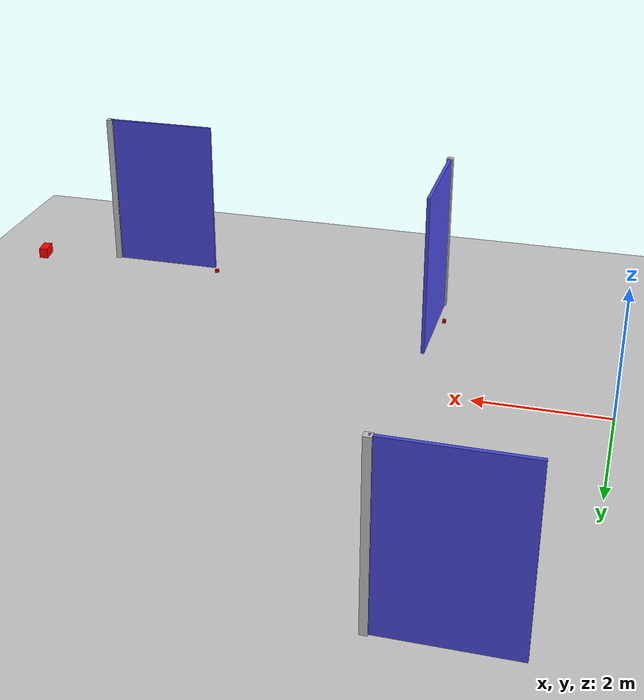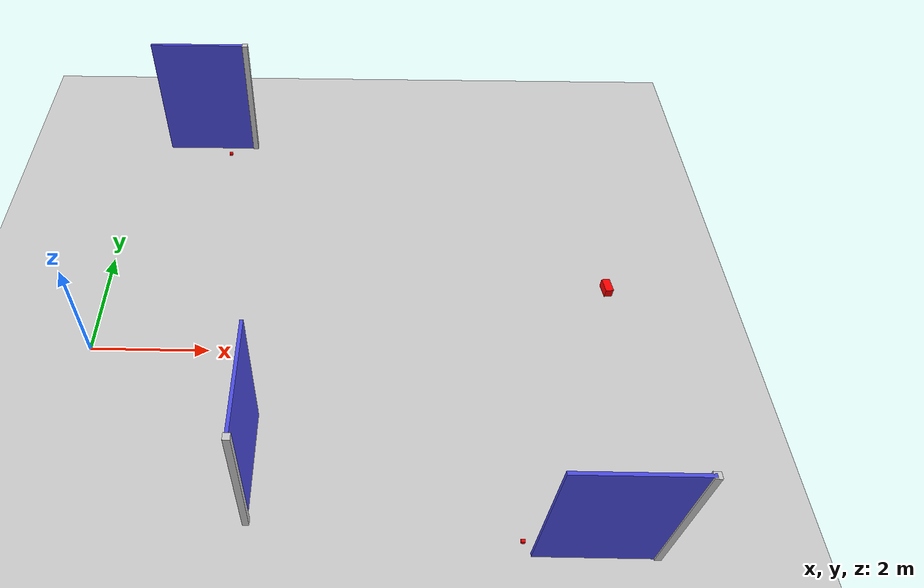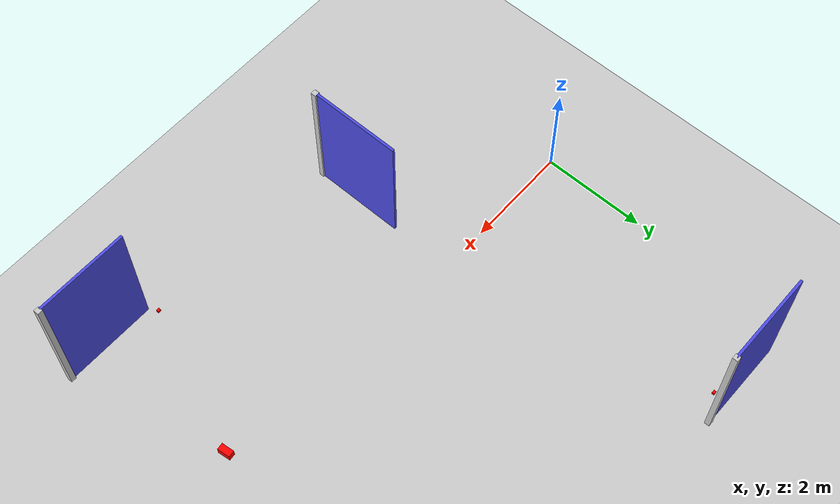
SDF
<sdf version="1.7">
 <world name="default">
  <model name="ground_plane">
   <static>1</static>
   <link name="link">
    <collision name="collision">
     <geometry><plane><normal>0 0 1</normal><size>100 100</size></plane></geometry>
     <surface><friction><ode><mu>100</mu><mu2>50</mu2></ode></friction></surface>
    </collision>
    <visual name="visual">
     <cast_shadows>0</cast_shadows>
     <geometry><plane><normal>0 0 1</normal><size>100 100</size></plane></geometry>
     <material>
      <script><uri>file://media/materials/scripts/gazebo.material</uri><name>Gazebo/Grey</name></script>
     </material>
    </visual>
   </link>
  </model>
  <model name="door_3">
   <link name="door_frame">
    <pose>0.883124 0.004995 1.25 0 -0 0</pose>
    <kinematic>1</kinematic>
    <inertial>
     <inertia><ixx>1</ixx><ixy>0</ixy><ixz>0</ixz><iyy>1</iyy><iyz>0</iyz><izz>1</izz></inertia>
     <mass>1</mass>
    </inertial>
    <visual name="frame_visual">
     <geometry><box><size>0.1 0.1 2.5</size></box></geometry>
     <material>
      <ambient>0.7 0.7 0.7 1</ambient>
      <diffuse>0.8 0.8 0.8 1</diffuse>
      <shader type="pixel"/>
      <script><name>ModelPreview_9::door_frame::frame_visual_MATERIAL_</name><uri>__default__</uri></script>
     </material>
    </visual>
    <collision name="frame_collision">
     <geometry><box><size>0.1 1 2.5</size></box></geometry>
     <surface>
      <friction>
       <ode><mu>1</mu><mu2>1</mu2><fdir1>0 0 0</fdir1><slip1>0</slip1><slip2>0</slip2></ode>
       <torsional>
        <coefficient>1</coefficient>
        <patch_radius>0</patch_radius>
        <surface_radius>0</surface_radius>
        <use_patch_radius>1</use_patch_radius>
        <ode><slip>0</slip></ode>
       </torsional>
      </friction>
      <bounce><restitution_coefficient>0</restitution_coefficient><threshold>1e+06</threshold></bounce>
      <contact>
       <collide_without_contact>0</collide_without_contact>
       <collide_without_contact_bitmask>1</collide_without_contact_bitmask>
       <collide_bitmask>1</collide_bitmask>
       <ode>
        <soft_cfm>0</soft_cfm>
        <soft_erp>0.2</soft_erp>
        <kp>1e+13</kp>
        <kd>1</kd>
        <max_vel>0.01</max_vel>
        <min_depth>0</min_depth>
       </ode>
       <bullet>
        <split_impulse>1</split_impulse>
        <split_impulse_penetration_threshold>-0.01</split_impulse_penetration_threshold>
        <soft_cfm>0</soft_cfm>
        <soft_erp>0.2</soft_erp>
        <kp>1e+13</kp>
        <kd>1</kd>
       </bullet>
      </contact>
     </surface>
    </collision>
   </link>
   <link name="door">
    <kinematic>1</kinematic>
    <pose>0 0 1.25 0 -0 0</pose>
    <inertial>
     <inertia><ixx>1.83367</ixx><ixy>0</ixy><ixz>0</ixz><iyy>2.74098</iyy><iyz>0</iyz><izz>0.90878</izz></inertia>
     <mass>3.51924</mass>
    </inertial>
    <visual name="door_visual">
     <geometry><box><size>1.75963 0.05 2.5</size></box></geometry>
     <material>
      <ambient>0.2 0.2 0.8 1</ambient>
      <diffuse>0.3 0.3 0.9 1</diffuse>
      <shader type="pixel"/>
      <script><name>ModelPreview_9::door::door_visual_MATERIAL_</name><uri>__default__</uri></script>
     </material>
    </visual>
    <collision name="door_collision">
     <geometry><box><size>1.75963 0.05 2.5</size></box></geometry>
     <surface>
      <friction>
       <ode><mu>1</mu><mu2>1</mu2><fdir1>0 0 0</fdir1><slip1>0</slip1><slip2>0</slip2></ode>
       <torsional>
        <coefficient>1</coefficient>
        <patch_radius>0</patch_radius>
        <surface_radius>0</surface_radius>
        <use_patch_radius>1</use_patch_radius>
        <ode><slip>0</slip></ode>
       </torsional>
      </friction>
      <bounce><restitution_coefficient>0</restitution_coefficient><threshold>1e+06</threshold></bounce>
      <contact>
       <collide_without_contact>0</collide_without_contact>
       <collide_without_contact_bitmask>1</collide_without_contact_bitmask>
       <collide_bitmask>1</collide_bitmask>
       <ode>
        <soft_cfm>0</soft_cfm>
        <soft_erp>0.2</soft_erp>
        <kp>1e+13</kp>
        <kd>1</kd>
        <max_vel>0.01</max_vel>
        <min_depth>0</min_depth>
       </ode>
       <bullet>
        <split_impulse>1</split_impulse>
        <split_impulse_penetration_threshold>-0.01</split_impulse_penetration_threshold>
        <soft_cfm>0</soft_cfm>
        <soft_erp>0.2</soft_erp>
        <kp>1e+13</kp>
        <kd>1</kd>
       </bullet>
      </contact>
     </surface>
    </collision>
   </link>
   <joint name="door_joint" type="prismatic">
    <parent>door_frame</parent>
    <child>door</child>
    <axis>
     <xyz>1 0 0</xyz>
     <limit><lower>0</lower><upper>2.0</upper><effort>-1</effort><velocity>-1</velocity></limit>
     <dynamics>
      <spring_reference>0</spring_reference>
      <spring_stiffness>0</spring_stiffness>
      <damping>0</damping>
      <friction>0</friction>
     </dynamics>
    </axis>
    <physics>
     <ode><limit><cfm>0</cfm><erp>0.2</erp></limit><suspension><cfm>0</cfm><erp>0.2</erp></suspension></ode>
    </physics>
   </joint>
   <static>0</static>
   <plugin name="door_control_plugin" filename="libdoor_control_plugin.so">
    <door_joint>door_joint</door_joint>
    <speed>1.0</speed>
    <open_target>1.0</open_target>
    <close_target>0.0</close_target>
   </plugin>
   <pose>1.42366 5.19412 0 0 -0 0</pose>
  </model>
  <model name="door_4">
   <link name="door_frame">
    <pose>0.883124 0.004995 1.25 0 -0 0</pose>
    <kinematic>1</kinematic>
    <inertial>
     <inertia><ixx>1</ixx><ixy>0</ixy><ixz>0</ixz><iyy>1</iyy><iyz>0</iyz><izz>1</izz></inertia>
     <mass>1</mass>
    </inertial>
    <visual name="frame_visual">
     <geometry><box><size>0.1 0.1 2.5</size></box></geometry>
     <material>
      <ambient>0.7 0.7 0.7 1</ambient>
      <diffuse>0.8 0.8 0.8 1</diffuse>
      <shader type="pixel"/>
      <script><name>ModelPreview_9::door_frame::frame_visual_MATERIAL_</name><uri>__default__</uri></script>
     </material>
    </visual>
    <collision name="frame_collision">
     <geometry><box><size>0.1 1 2.5</size></box></geometry>
     <surface>
      <friction>
       <ode><mu>1</mu><mu2>1</mu2><fdir1>0 0 0</fdir1><slip1>0</slip1><slip2>0</slip2></ode>
       <torsional>
        <coefficient>1</coefficient>
        <patch_radius>0</patch_radius>
        <surface_radius>0</surface_radius>
        <use_patch_radius>1</use_patch_radius>
        <ode><slip>0</slip></ode>
       </torsional>
      </friction>
      <bounce><restitution_coefficient>0</restitution_coefficient><threshold>1e+06</threshold></bounce>
      <contact>
       <collide_without_contact>0</collide_without_contact>
       <collide_without_contact_bitmask>1</collide_without_contact_bitmask>
       <collide_bitmask>1</collide_bitmask>
       <ode>
        <soft_cfm>0</soft_cfm>
        <soft_erp>0.2</soft_erp>
        <kp>1e+13</kp>
        <kd>1</kd>
        <max_vel>0.01</max_vel>
        <min_depth>0</min_depth>
       </ode>
       <bullet>
        <split_impulse>1</split_impulse>
        <split_impulse_penetration_threshold>-0.01</split_impulse_penetration_threshold>
        <soft_cfm>0</soft_cfm>
        <soft_erp>0.2</soft_erp>
        <kp>1e+13</kp>
        <kd>1</kd>
       </bullet>
      </contact>
     </surface>
    </collision>
   </link>
   <link name="door">
    <kinematic>1</kinematic>
    <pose>0 0 1.25 0 -0 0</pose>
    <inertial>
     <inertia><ixx>1.83367</ixx><ixy>0</ixy><ixz>0</ixz><iyy>2.74098</iyy><iyz>0</iyz><izz>0.90878</izz></inertia>
     <mass>3.51924</mass>
    </inertial>
    <visual name="door_visual">
     <geometry><box><size>1.75963 0.05 2.5</size></box></geometry>
     <material>
      <ambient>0.2 0.2 0.8 1</ambient>
      <diffuse>0.3 0.3 0.9 1</diffuse>
      <shader type="pixel"/>
      <script><name>ModelPreview_9::door::door_visual_MATERIAL_</name><uri>__default__</uri></script>
     </material>
    </visual>
    <collision name="door_collision">
     <geometry><box><size>1.75963 0.05 2.5</size></box></geometry>
     <surface>
      <friction>
       <ode><mu>1</mu><mu2>1</mu2><fdir1>0 0 0</fdir1><slip1>0</slip1><slip2>0</slip2></ode>
       <torsional>
        <coefficient>1</coefficient>
        <patch_radius>0</patch_radius>
        <surface_radius>0</surface_radius>
        <use_patch_radius>1</use_patch_radius>
        <ode><slip>0</slip></ode>
       </torsional>
      </friction>
      <bounce><restitution_coefficient>0</restitution_coefficient><threshold>1e+06</threshold></bounce>
      <contact>
       <collide_without_contact>0</collide_without_contact>
       <collide_without_contact_bitmask>1</collide_without_contact_bitmask>
       <collide_bitmask>1</collide_bitmask>
       <ode>
        <soft_cfm>0</soft_cfm>
        <soft_erp>0.2</soft_erp>
        <kp>1e+13</kp>
        <kd>1</kd>
        <max_vel>0.01</max_vel>
        <min_depth>0</min_depth>
       </ode>
       <bullet>
        <split_impulse>1</split_impulse>
        <split_impulse_penetration_threshold>-0.01</split_impulse_penetration_threshold>
        <soft_cfm>0</soft_cfm>
        <soft_erp>0.2</soft_erp>
        <kp>1e+13</kp>
        <kd>1</kd>
       </bullet>
      </contact>
     </surface>
    </collision>
   </link>
   <joint name="door_joint" type="prismatic">
    <parent>door_frame</parent>
    <child>door</child>
    <axis>
     <xyz>1 0 0</xyz>
     <limit><lower>0</lower><upper>2.0</upper><effort>-1</effort><velocity>-1</velocity></limit>
     <dynamics>
      <spring_reference>0</spring_reference>
      <spring_stiffness>0</spring_stiffness>
      <damping>0</damping>
      <friction>0</friction>
     </dynamics>
    </axis>
    <physics>
     <ode><limit><cfm>0</cfm><erp>0.2</erp></limit><suspension><cfm>0</cfm><erp>0.2</erp></suspension></ode>
    </physics>
   </joint>
   <static>0</static>
   <plugin name="door_control_plugin" filename="libdoor_control_plugin.so">
    <door_joint>door_joint</door_joint>
    <speed>1.0</speed>
    <open_target>1.0</open_target>
    <close_target>0.0</close_target>
   </plugin>
   <pose>7.85155 -3.37834 0 0 -0 0</pose>
  </model>
  <model name="door_5">
   <link name="door_frame">
    <pose>0.883124 0.004995 1.25 0 -0 0</pose>
    <kinematic>1</kinematic>
    <inertial>
     <inertia><ixx>1</ixx><ixy>0</ixy><ixz>0</ixz><iyy>1</iyy><iyz>0</iyz><izz>1</izz></inertia>
     <mass>1</mass>
    </inertial>
    <visual name="frame_visual">
     <geometry><box><size>0.1 0.1 2.5</size></box></geometry>
     <material>
      <ambient>0.7 0.7 0.7 1</ambient>
      <diffuse>0.8 0.8 0.8 1</diffuse>
      <shader type="pixel"/>
      <script><name>ModelPreview_9::door_frame::frame_visual_MATERIAL_</name><uri>__default__</uri></script>
     </material>
    </visual>
    <collision name="frame_collision">
     <geometry><box><size>0.1 1 2.5</size></box></geometry>
     <surface>
      <friction>
       <ode><mu>1</mu><mu2>1</mu2><fdir1>0 0 0</fdir1><slip1>0</slip1><slip2>0</slip2></ode>
       <torsional>
        <coefficient>1</coefficient>
        <patch_radius>0</patch_radius>
        <surface_radius>0</surface_radius>
        <use_patch_radius>1</use_patch_radius>
        <ode><slip>0</slip></ode>
       </torsional>
      </friction>
      <bounce><restitution_coefficient>0</restitution_coefficient><threshold>1e+06</threshold></bounce>
      <contact>
       <collide_without_contact>0</collide_without_contact>
       <collide_without_contact_bitmask>1</collide_without_contact_bitmask>
       <collide_bitmask>1</collide_bitmask>
       <ode>
        <soft_cfm>0</soft_cfm>
        <soft_erp>0.2</soft_erp>
        <kp>1e+13</kp>
        <kd>1</kd>
        <max_vel>0.01</max_vel>
        <min_depth>0</min_depth>
       </ode>
       <bullet>
        <split_impulse>1</split_impulse>
        <split_impulse_penetration_threshold>-0.01</split_impulse_penetration_threshold>
        <soft_cfm>0</soft_cfm>
        <soft_erp>0.2</soft_erp>
        <kp>1e+13</kp>
        <kd>1</kd>
       </bullet>
      </contact>
     </surface>
    </collision>
   </link>
   <link name="door">
    <kinematic>1</kinematic>
    <pose>0 0 1.25 0 -0 0</pose>
    <inertial>
     <inertia><ixx>1.83367</ixx><ixy>0</ixy><ixz>0</ixz><iyy>2.74098</iyy><iyz>0</iyz><izz>0.90878</izz></inertia>
     <mass>3.51924</mass>
    </inertial>
    <visual name="door_visual">
     <geometry><box><size>1.75963 0.05 2.5</size></box></geometry>
     <material>
      <ambient>0.2 0.2 0.8 1</ambient>
      <diffuse>0.3 0.3 0.9 1</diffuse>
      <shader type="pixel"/>
      <script><name>ModelPreview_9::door::door_visual_MATERIAL_</name><uri>__default__</uri></script>
     </material>
    </visual>
    <collision name="door_collision">
     <geometry><box><size>1.75963 0.05 2.5</size></box></geometry>
     <surface>
      <friction>
       <ode><mu>1</mu><mu2>1</mu2><fdir1>0 0 0</fdir1><slip1>0</slip1><slip2>0</slip2></ode>
       <torsional>
        <coefficient>1</coefficient>
        <patch_radius>0</patch_radius>
        <surface_radius>0</surface_radius>
        <use_patch_radius>1</use_patch_radius>
        <ode><slip>0</slip></ode>
       </torsional>
      </friction>
      <bounce><restitution_coefficient>0</restitution_coefficient><threshold>1e+06</threshold></bounce>
      <contact>
       <collide_without_contact>0</collide_without_contact>
       <collide_without_contact_bitmask>1</collide_without_contact_bitmask>
       <collide_bitmask>1</collide_bitmask>
       <ode>
        <soft_cfm>0</soft_cfm>
        <soft_erp>0.2</soft_erp>
        <kp>1e+13</kp>
        <kd>1</kd>
        <max_vel>0.01</max_vel>
        <min_depth>0</min_depth>
       </ode>
       <bullet>
        <split_impulse>1</split_impulse>
        <split_impulse_penetration_threshold>-0.01</split_impulse_penetration_threshold>
        <soft_cfm>0</soft_cfm>
        <soft_erp>0.2</soft_erp>
        <kp>1e+13</kp>
        <kd>1</kd>
       </bullet>
      </contact>
     </surface>
    </collision>
   </link>
   <joint name="door_joint" type="prismatic">
    <parent>door_frame</parent>
    <child>door</child>
    <axis>
     <xyz>1 0 0</xyz>
     <limit><lower>0</lower><upper>2.0</upper><effort>-1</effort><velocity>-1</velocity></limit>
     <dynamics>
      <spring_reference>0</spring_reference>
      <spring_stiffness>0</spring_stiffness>
      <damping>0</damping>
      <friction>0</friction>
     </dynamics>
    </axis>
    <physics>
     <ode><limit><cfm>0</cfm><erp>0.2</erp></limit><suspension><cfm>0</cfm><erp>0.2</erp></suspension></ode>
    </physics>
   </joint>
   <static>0</static>
   <plugin name="door_control_plugin" filename="libdoor_control_plugin.so">
    <door_joint>door_joint</door_joint>
    <speed>1.0</speed>
    <open_target>1.0</open_target>
    <close_target>0.0</close_target>
   </plugin>
   <pose>2.92343 -2.09013 0 0 0 -1.57268</pose>
  </model>
  <model name="Lidar_1">
   <link name="link_1">
    <inertial>
     <mass>0.00014111</mass>
     <inertia><ixx>7e-08</ixx><ixy>0</ixy><ixz>0</ixz><iyy>7e-08</iyy><iyz>0</iyz><izz>6e-08</izz></inertia>
    </inertial>
    <visual name="visual">
     <geometry><box><size>0.048286 0.048861 0.059852</size></box></geometry>
     <material>
      <lighting>1</lighting>
      <script><uri>file://media/materials/scripts/gazebo.material</uri><name>Gazebo/Grey</name></script>
      <shader type="pixel"><normal_map>__default__</normal_map></shader>
      <ambient>1 0 0 1</ambient>
      <diffuse>0.7 0.7 0.7 1</diffuse>
      <specular>0.01 0.01 0.01 1</specular>
      <emissive>0 0 0 1</emissive>
     </material>
    </visual>
    <collision name="collision">
     <geometry><box><size>0.048286 0.048861 0.059852</size></box></geometry>
     <surface>
      <friction>
       <ode><mu>1</mu><mu2>1</mu2><fdir1>0 0 0</fdir1><slip1>0</slip1><slip2>0</slip2></ode>
       <torsional>
        <coefficient>1</coefficient>
        <patch_radius>0</patch_radius>
        <surface_radius>0</surface_radius>
        <use_patch_radius>1</use_patch_radius>
        <ode><slip>0</slip></ode>
       </torsional>
      </friction>
      <bounce><restitution_coefficient>0</restitution_coefficient><threshold>1e+06</threshold></bounce>
      <contact>
       <collide_without_contact>0</collide_without_contact>
       <collide_without_contact_bitmask>1</collide_without_contact_bitmask>
       <collide_bitmask>1</collide_bitmask>
       <ode>
        <soft_cfm>0</soft_cfm>
        <soft_erp>0.2</soft_erp>
        <kp>1e+13</kp>
        <kd>1</kd>
        <max_vel>0.01</max_vel>
        <min_depth>0</min_depth>
       </ode>
       <bullet>
        <split_impulse>1</split_impulse>
        <split_impulse_penetration_threshold>-0.01</split_impulse_penetration_threshold>
        <soft_cfm>0</soft_cfm>
        <soft_erp>0.2</soft_erp>
        <kp>1e+13</kp>
        <kd>1</kd>
       </bullet>
      </contact>
     </surface>
    </collision>
   </link>
   <static>0</static>
   <pose>2.79303 -2.32179 0.024423 -1.57087 -8e-06 0.004113</pose>
  </model>
  <model name="Lidar_2">
   <link name="link_1">
    <inertial>
     <mass>0.00014111</mass>
     <inertia><ixx>7e-08</ixx><ixy>0</ixy><ixz>0</ixz><iyy>7e-08</iyy><iyz>0</iyz><izz>6e-08</izz></inertia>
    </inertial>
    <visual name="visual">
     <geometry><box><size>0.048286 0.048861 0.059852</size></box></geometry>
     <material>
      <lighting>1</lighting>
      <script><uri>file://media/materials/scripts/gazebo.material</uri><name>Gazebo/Grey</name></script>
      <shader type="pixel"><normal_map>__default__</normal_map></shader>
      <ambient>1 0 0 1</ambient>
      <diffuse>0.7 0.7 0.7 1</diffuse>
      <specular>0.01 0.01 0.01 1</specular>
      <emissive>0 0 0 1</emissive>
     </material>
    </visual>
    <collision name="collision">
     <geometry><box><size>0.048286 0.048861 0.059852</size></box></geometry>
     <surface>
      <friction>
       <ode><mu>1</mu><mu2>1</mu2><fdir1>0 0 0</fdir1><slip1>0</slip1><slip2>0</slip2></ode>
       <torsional>
        <coefficient>1</coefficient>
        <patch_radius>0</patch_radius>
        <surface_radius>0</surface_radius>
        <use_patch_radius>1</use_patch_radius>
        <ode><slip>0</slip></ode>
       </torsional>
      </friction>
      <bounce><restitution_coefficient>0</restitution_coefficient><threshold>1e+06</threshold></bounce>
      <contact>
       <collide_without_contact>0</collide_without_contact>
       <collide_without_contact_bitmask>1</collide_without_contact_bitmask>
       <collide_bitmask>1</collide_bitmask>
       <ode>
        <soft_cfm>0</soft_cfm>
        <soft_erp>0.2</soft_erp>
        <kp>1e+13</kp>
        <kd>1</kd>
        <max_vel>0.01</max_vel>
        <min_depth>0</min_depth>
       </ode>
       <bullet>
        <split_impulse>1</split_impulse>
        <split_impulse_penetration_threshold>-0.01</split_impulse_penetration_threshold>
        <soft_cfm>0</soft_cfm>
        <soft_erp>0.2</soft_erp>
        <kp>1e+13</kp>
        <kd>1</kd>
       </bullet>
      </contact>
     </surface>
    </collision>
   </link>
   <static>0</static>
   <pose>1.8151 4.95888 0.024137 2.5155 -1.5707 -2.52466</pose>
  </model>
  <model name="Lidar_6">
   <link name="link_1">
    <inertial>
     <mass>0.00014111</mass>
     <inertia><ixx>7e-08</ixx><ixy>0</ixy><ixz>0</ixz><iyy>7e-08</iyy><iyz>0</iyz><izz>6e-08</izz></inertia>
    </inertial>
    <visual name="visual">
     <geometry><box><size>0.048286 0.048861 0.059852</size></box></geometry>
     <material>
      <lighting>1</lighting>
      <script><uri>file://media/materials/scripts/gazebo.material</uri><name>Gazebo/Grey</name></script>
      <shader type="pixel"><normal_map>__default__</normal_map></shader>
      <ambient>1 0 0 1</ambient>
      <diffuse>0.7 0.7 0.7 1</diffuse>
      <specular>0.01 0.01 0.01 1</specular>
      <emissive>0 0 0 1</emissive>
     </material>
    </visual>
    <collision name="collision">
     <geometry><box><size>0.048286 0.048861 0.059852</size></box></geometry>
     <surface>
      <friction>
       <ode><mu>1</mu><mu2>1</mu2><fdir1>0 0 0</fdir1><slip1>0</slip1><slip2>0</slip2></ode>
       <torsional>
        <coefficient>1</coefficient>
        <patch_radius>0</patch_radius>
        <surface_radius>0</surface_radius>
        <use_patch_radius>1</use_patch_radius>
        <ode><slip>0</slip></ode>
       </torsional>
      </friction>
      <bounce><restitution_coefficient>0</restitution_coefficient><threshold>1e+06</threshold></bounce>
      <contact>
       <collide_without_contact>0</collide_without_contact>
       <collide_without_contact_bitmask>1</collide_without_contact_bitmask>
       <collide_bitmask>1</collide_bitmask>
       <ode>
        <soft_cfm>0</soft_cfm>
        <soft_erp>0.2</soft_erp>
        <kp>1e+13</kp>
        <kd>1</kd>
        <max_vel>0.01</max_vel>
        <min_depth>0</min_depth>
       </ode>
       <bullet>
        <split_impulse>1</split_impulse>
        <split_impulse_penetration_threshold>-0.01</split_impulse_penetration_threshold>
        <soft_cfm>0</soft_cfm>
        <soft_erp>0.2</soft_erp>
        <kp>1e+13</kp>
        <kd>1</kd>
       </bullet>
      </contact>
     </surface>
    </collision>
   </link>
   <static>0</static>
   <pose>6.88095 -3.19338 0.024139 0.353936 1.5707 0.344828</pose>
  </model>
  <model name="Camera_1">
   <link name="link_1">
    <inertial>
     <mass>0.00014152</mass>
     <inertia><ixx>8.3e-07</ixx><ixy>0</ixy><ixz>0</ixz><iyy>4e-07</iyy><iyz>0</iyz><izz>7.7e-07</izz></inertia>
    </inertial>
    <gravity>0</gravity>
    <visual name="visual">
     <geometry><box><size>0.119276 0.225925 0.14044</size></box></geometry>
     <material>
      <lighting>1</lighting>
      <script><uri>file://media/materials/scripts/gazebo.material</uri><name>Gazebo/Grey</name></script>
      <shader type="pixel"><normal_map>__default__</normal_map></shader>
      <ambient>1 0 0 1</ambient>
      <diffuse>0.7 0.7 0.7 1</diffuse>
      <specular>0.01 0.01 0.01 1</specular>
      <emissive>0 0 0 1</emissive>
     </material>
    </visual>
    <collision name="collision">
     <geometry><box><size>0.119276 0.225925 0.14044</size></box></geometry>
     <surface>
      <friction>
       <ode><mu>1</mu><mu2>1</mu2><fdir1>0 0 0</fdir1><slip1>0</slip1><slip2>0</slip2></ode>
       <torsional>
        <coefficient>1</coefficient>
        <patch_radius>0</patch_radius>
        <surface_radius>0</surface_radius>
        <use_patch_radius>1</use_patch_radius>
        <ode><slip>0</slip></ode>
       </torsional>
      </friction>
      <bounce><restitution_coefficient>0</restitution_coefficient><threshold>1e+06</threshold></bounce>
      <contact>
       <collide_without_contact>0</collide_without_contact>
       <collide_without_contact_bitmask>1</collide_without_contact_bitmask>
       <collide_bitmask>1</collide_bitmask>
       <ode>
        <soft_cfm>0</soft_cfm>
        <soft_erp>0.2</soft_erp>
        <kp>1e+13</kp>
        <kd>1</kd>
        <max_vel>0.01</max_vel>
        <min_depth>0</min_depth>
       </ode>
       <bullet>
        <split_impulse>1</split_impulse>
        <split_impulse_penetration_threshold>-0.01</split_impulse_penetration_threshold>
        <soft_cfm>0</soft_cfm>
        <soft_erp>0.2</soft_erp>
        <kp>1e+13</kp>
        <kd>1</kd>
       </bullet>
      </contact>
     </surface>
    </collision>
   </link>
   <static>0</static>
   <pose>8.30181 0.137486 1.65366 0 0 -3.02695</pose>
  </model>
 </world>
</sdf>
